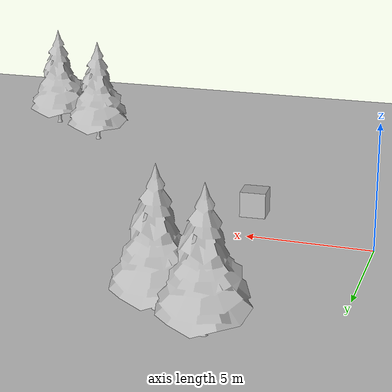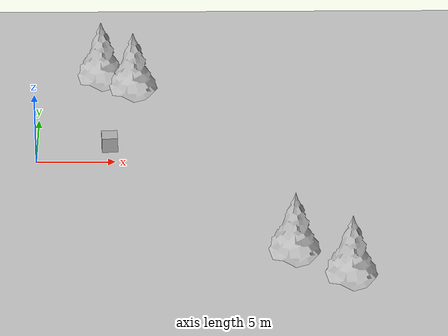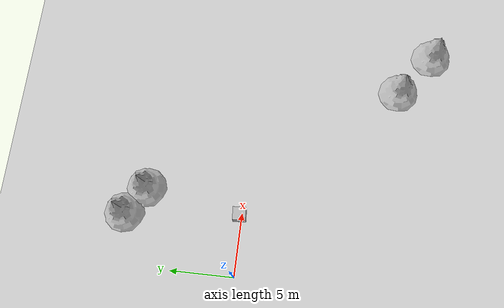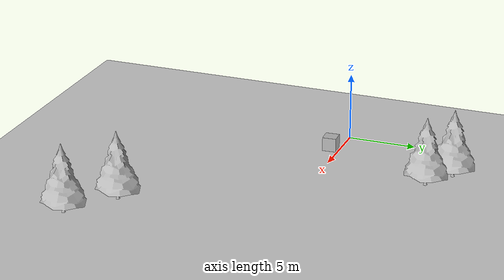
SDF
<sdf version="1.4">
 <world name="vrc_task_1">
  <scene><ambient>0.4 0.4 0.4 1</ambient><background>0.7 0.7 0.7 1</background><shadows>1</shadows></scene>
  <physics name="default_physics" default="0" type="ode">
   <gravity>0 0 -9.8066</gravity>
   <ode>
    <solver>
     <type>quick</type>
     <iters>10</iters>
     <sor>1.0</sor>
     <use_dynamic_moi_rescaling>0</use_dynamic_moi_rescaling>
    </solver>
    <constraints>
     <cfm>0</cfm>
     <erp>0.2</erp>
     <contact_max_correcting_vel>100</contact_max_correcting_vel>
     <contact_surface_layer>0.001</contact_surface_layer>
    </constraints>
   </ode>
   <max_step_size>0.004</max_step_size>
   <real_time_factor>1</real_time_factor>
   <real_time_update_rate>250</real_time_update_rate>
   <magnetic_field>6e-06 2.3e-05 -4.2e-05</magnetic_field>
  </physics>
  <light name="sun" type="directional">
   <pose>0 0 10 0 0 0</pose>
   <diffuse>0.8 0.8 0.8 1</diffuse>
   <specular>0.2 0.2 0.2 1</specular>
   <attenuation>
    <range>1000</range>
    <constant>0.9</constant>
    <linear>0.01</linear>
    <quadratic>0.001</quadratic>
   </attenuation>
   <direction>-0.5 0.1 -0.9</direction>
  </light>
  <include><uri>model://ground_plane</uri></include>
  <include><name>pine_tree_1</name><uri>model://pine_tree</uri><pose>4 9 0   0 0 0</pose></include>
  <include><name>pine_tree_2</name><uri>model://pine_tree</uri><pose>6.1 7.6 0   0 0 0</pose></include>
  <include><name>pine_tree_3</name><uri>model://pine_tree</uri><pose>19.3 -14 0   0 0 0</pose></include>
  <include><name>pine_tree_4</name><uri>model://pine_tree</uri><pose>16 -11.5 0  0 0 0</pose></include>
  <model name="textured_shapes_c">
   <pose>4.577162 1.575164 1.501634 -0.001606 0.000826 0.059386</pose>
   <link name="box">
    <pose>0 -1.5 0 0 -0 0</pose>
    <collision name="collision"><geometry><box><size>1 1 1</size></box></geometry></collision>
    <visual name="visual">
     <geometry><box><size>1 1 1</size></box></geometry>
     <material>
      <script>
       <uri>model://fire/materials/scripts</uri>
       <uri>model://fire/materials/textures</uri>
       <name>TexturedShape/APtag</name>
      </script>
     </material>
    </visual>
    <inertial>
     <inertia><ixx>1</ixx><ixy>0</ixy><ixz>0</ixz><iyy>1</iyy><iyz>0</iyz><izz>1</izz></inertia>
     <mass>1</mass>
    </inertial>
   </link>
  </model>
  <model name="textured_shapes_c">
   <pose>4.577162 1.575164 1.501634 -0.001606 0.000826 0.059386</pose>
   <link name="box">
    <pose>0 -1.5 0 0 -0 0</pose>
    <collision name="collision"><geometry><box><size>1 1 1</size></box></geometry></collision>
    <visual name="visual">
     <geometry><box><size>1 1 1</size></box></geometry>
     <material>
      <script>
       <uri>model://fire/materials/scripts</uri>
       <uri>model://fire/materials/textures</uri>
       <name>TexturedShape/APtag</name>
      </script>
     </material>
    </visual>
    <inertial>
     <inertia><ixx>1</ixx><ixy>0</ixy><ixz>0</ixz><iyy>1</iyy><iyz>0</iyz><izz>1</izz></inertia>
     <mass>1</mass>
    </inertial>
   </link>
  </model>
  <model name="textured_shapes_c">
   <pose>2.43455 1.22622 1 0 -0 -0.054698</pose>
   <scale>1 1 1</scale>
   <link name="box">
    <pose>2.35254 -0.271539 1 0 -0 -0.054698</pose>
    <velocity>0 0 0 0 -0 0</velocity>
    <acceleration>0 -0 0 0 -0 0</acceleration>
    <wrench>0 -0 0 0 -0 0</wrench>
   </link>
  </model>
 </world>
</sdf>

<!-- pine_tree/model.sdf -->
<sdf version="1.6">
  <model name="pine_tree">
    <static>true</static>
    <link name="link">
      <collision name="collision">
        <geometry>
          <mesh>
            <uri>file://isr-testbed/pine_tree/meshes/pine_tree.dae</uri>
          </mesh>
        </geometry>
      </collision>
      <visual name="branch">
        <geometry>
          <mesh>
            <uri>file://isr-testbed/pine_tree/meshes/pine_tree.dae</uri>
            <submesh>
              <name>Branch</name>
            </submesh>
          </mesh>
        </geometry>
        <material>
          <script>
            <uri>file://isr-testbed/pine_tree/materials/scripts/</uri>
            <uri>file://isr-testbed/pine_tree/materials/textures/</uri>
            <name>PineTree/Branch</name>
          </script>
        </material>
      </visual>
      <visual name="bark">
        <geometry>
          <mesh>
            <uri>file://isr-testbed/pine_tree/meshes/pine_tree.dae</uri>
            <submesh>
              <name>Bark</name>
            </submesh>
          </mesh>
        </geometry>
        <material>
          <script>
            <uri>file://isr-testbed/pine_tree/materials/scripts/</uri>
            <uri>file://isr-testbed/pine_tree/materials/textures/</uri>
            <name>PineTree/Bark</name>
          </script>
        </material>
      </visual>
    </link>
  </model>
</sdf>
